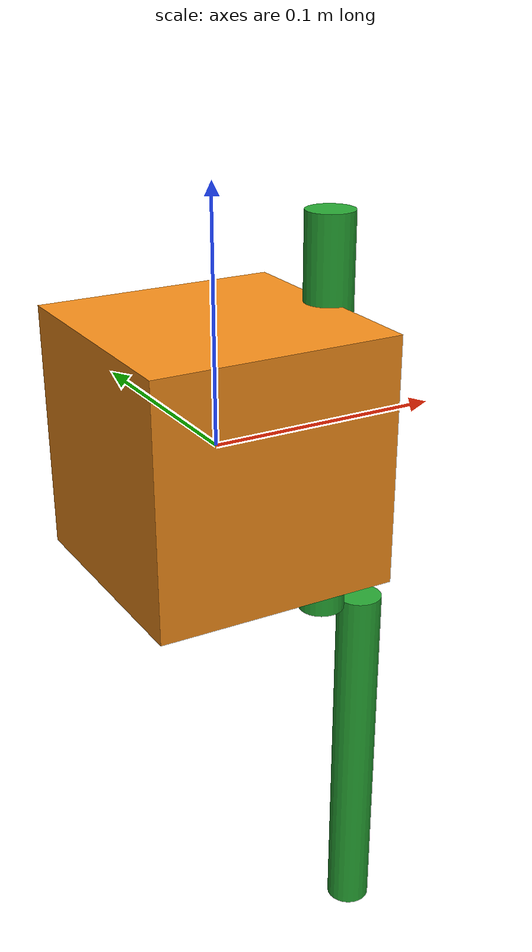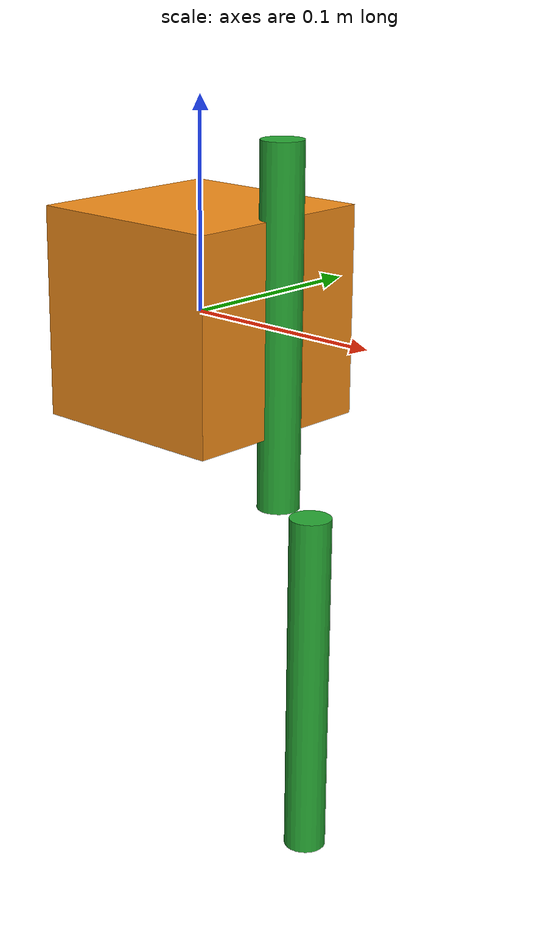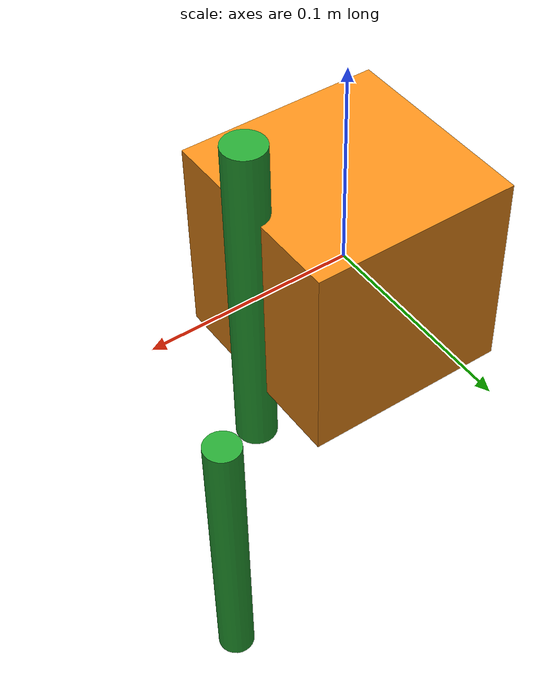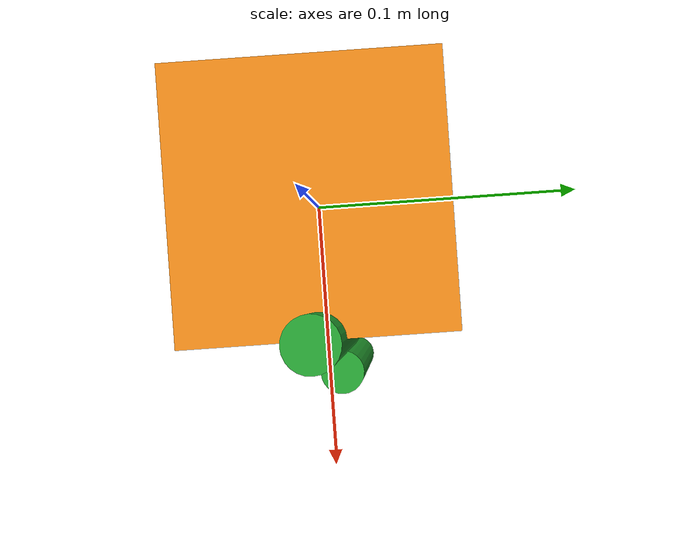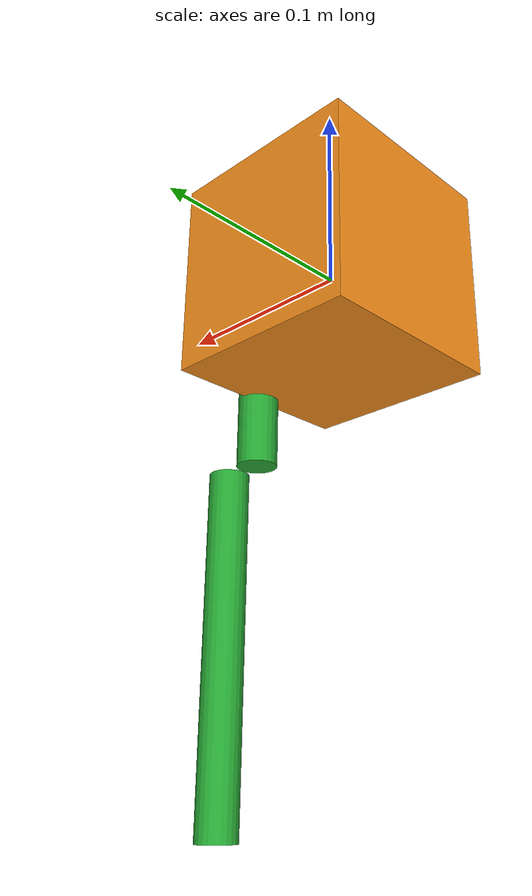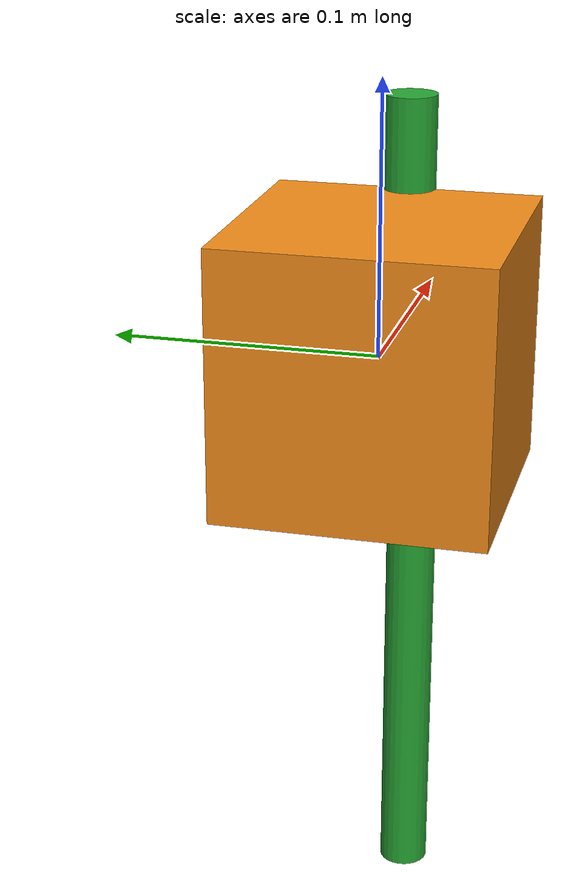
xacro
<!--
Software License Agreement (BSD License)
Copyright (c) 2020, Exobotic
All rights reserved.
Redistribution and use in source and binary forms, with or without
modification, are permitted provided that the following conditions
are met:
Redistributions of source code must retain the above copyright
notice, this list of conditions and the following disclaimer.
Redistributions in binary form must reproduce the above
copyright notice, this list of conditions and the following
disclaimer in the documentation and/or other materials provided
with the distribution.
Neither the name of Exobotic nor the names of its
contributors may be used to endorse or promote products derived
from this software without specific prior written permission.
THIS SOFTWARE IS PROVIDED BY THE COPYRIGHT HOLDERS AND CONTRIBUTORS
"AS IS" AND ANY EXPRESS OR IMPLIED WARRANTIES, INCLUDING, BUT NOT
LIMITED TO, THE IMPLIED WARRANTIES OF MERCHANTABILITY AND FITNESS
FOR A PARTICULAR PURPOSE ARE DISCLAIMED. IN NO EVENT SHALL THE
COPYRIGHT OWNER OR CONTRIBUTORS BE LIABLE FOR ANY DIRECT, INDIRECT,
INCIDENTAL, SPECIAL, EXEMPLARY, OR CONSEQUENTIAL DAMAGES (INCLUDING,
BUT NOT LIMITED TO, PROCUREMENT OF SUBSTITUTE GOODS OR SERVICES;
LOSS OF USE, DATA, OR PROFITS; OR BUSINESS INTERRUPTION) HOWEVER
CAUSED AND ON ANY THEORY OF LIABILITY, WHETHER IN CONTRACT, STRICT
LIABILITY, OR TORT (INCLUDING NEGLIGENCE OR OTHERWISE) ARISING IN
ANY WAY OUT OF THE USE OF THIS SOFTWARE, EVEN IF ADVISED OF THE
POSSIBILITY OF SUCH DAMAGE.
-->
<?xml version="1.0"?>

<robot name="fieldbot" xmlns:xacro="http://www.ros.org/wiki/xacro">

	<!-- Constants for robot dimensions -->
	<xacro:property name="PI" value="3.1415926535897931"/>
	<xacro:property name="DEG2RAD" value="0.017453292519943295"/>
	<xacro:property name="l1" value="0.17" /> <!-- length from theta1 to theta2 -->
	<xacro:property name="dr" value="0.19" /> <!-- rotor diameter -->

	<!-- Import Rviz colors -->
	<xacro:include filename="$(find iwp_bringup)/urdf/materials.xacro" />

	<link name="base_link">
		<collision>
			<origin xyz="0 0 0" rpy="0 0 0"/>
			<geometry>
				<box size="0.1 0.1 0.1"/>
			</geometry>
		</collision>
		<visual>
			<origin xyz="0 0 0" rpy="0 0 0"/>
			<geometry>
				<box size="0.1 0.1 0.1"/>
			</geometry>
			<material name="orange"/>
		</visual>
	</link>

	<joint name="theta1" type="continuous">
		<origin xyz="0.05 0.0 0.0" rpy="0 0 0"/>
		<parent link="base_link" />
		<child link="theta1_link" />
		<dynamics damping="0.04"/>
		<axis xyz="1 0 0" />
	</joint>
	<joint name="theta2" type="continuous">
		<origin xyz="0.02 0.0 ${-l1}" rpy="0 0 0"/>
		<parent link="theta1_link" />
		<child link="theta2_link" />
		<dynamics damping="0.01"/>
		<axis xyz="1 0 0" />
	</joint>

	<link name="theta1_link">
		<collision>
			<origin xyz="0 0 0" rpy="0 0 0"/>
			<geometry>
				<cylinder radius="0.01" length="${l1}"/>
			</geometry>
		</collision>
		<visual>
			<origin xyz="0 0 0" rpy="0 0 0"/>
			<geometry>
				<cylinder radius="0.01" length="${l1}"/>
			</geometry>
			<material name="green"/>
		</visual>
		<inertial>
			<origin xyz="0 0 0" rpy="0 0 0"/>
			<mass value="1.0"/>
			<inertia ixx="0.01" ixy="0.0" ixz="0.0"
					 iyy="0.0" iyz="0.0"
					 izz="0.0"/>
		</inertial>
	</link>
	<link name="theta2_link">
		<collision>
			<origin xyz="0 0 0" rpy="0 0 0"/>
			<geometry>
				<cylinder radius="0.01" length="${l1}"/>
			</geometry>
		</collision>
		<visual>
			<origin xyz="0 0 0" rpy="0 0 0"/>
			<geometry>
				<cylinder radius="0.01" length="${l1}"/>
			</geometry>
			<material name="green"/>
		</visual>
		<inertial>
			<origin xyz="0 0 0" rpy="0 0 0"/>
			<mass value="1.0"/>
			<inertia ixx="0.01" ixy="0.0" ixz="0.0"
					 iyy="0.0" iyz="0.0"
					 izz="0.0"/>
		</inertial>
	</link>

	<transmission name="theta1_trans">
		<type>transmission_interface/SimpleTransmission</type>
		<joint name="theta1">
			<hardwareInterface>hardware_interface/EffortJointInterface</hardwareInterface>
		</joint>
		<actuator name="theta1_motor">
			<mechanicalReduction>1</mechanicalReduction>
		</actuator>
	</transmission>
	<transmission name="theta2_trans">
		<type>transmission_interface/SimpleTransmission</type>
		<joint name="theta2">
			<hardwareInterface>hardware_interface/EffortJointInterface</hardwareInterface>
		</joint>
		<actuator name="theta2_motor">
			<mechanicalReduction>1</mechanicalReduction>
		</actuator>
	</transmission>

</robot>
